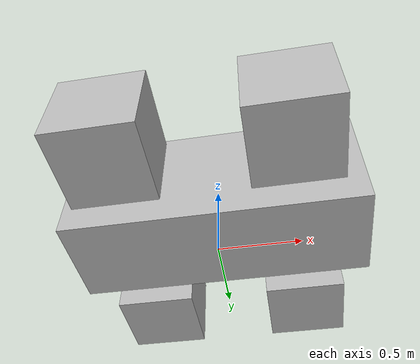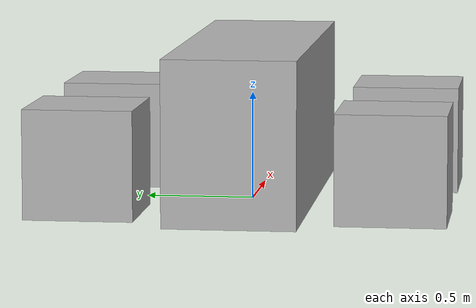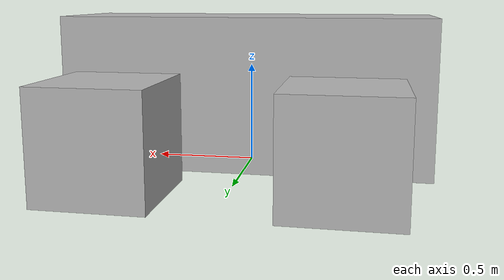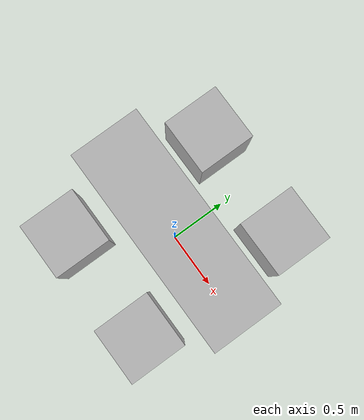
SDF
<?xml version="1.0" ?>
<sdf version='1.6'>
    <model name='Dining_Table'>
        <static>true</static>
        <!-- Table -->
        <link name="table">
            <pose>0 0 0.375 0 0 0</pose>
            <collision name="visual">
                <geometry>
                    <box>
                        <size>1.8 0.6 0.75</size>
                    </box>
                </geometry>
            </collision>
            <visual name="visual">
                <geometry>
                    <box>
                        <size>1.8 0.6 0.75</size>
                    </box>
                </geometry>
                <material>
                    <script>
                        <uri>model://Dining_Table/materials/scripts</uri>
                        <uri>model://Dining_Table/materials/textures</uri>
                        <name>Table/Dining_Table</name>
                    </script>
                </material>
            </visual>
        </link>
        <!-- Chair_Upper_Left -->
        <link name="chair_upper_left">
            <pose>0.5 0.7 0.25 0 0 0</pose>
            <collision name="visual">
                <geometry>
                    <box>
                        <size>0.5 0.5 0.5</size>
                    </box>
                </geometry>
            </collision>
            <visual name="visual">
                <geometry>
                    <box>
                        <size>0.5 0.5 0.5</size>
                    </box>
                </geometry>
                <material>
                    <script>
                        <uri>model://Dining_Table/materials/scripts</uri>
                        <uri>model://Dining_Table/materials/textures</uri>
                        <name>Table/Dining_Table</name>
                    </script>
                </material>
            </visual>
        </link>
        <!-- Chair_Lower_Left -->
        <link name="chair_lower_left">
            <pose>-0.5 0.7 0.25 0 0 0</pose>
            <collision name="visual">
                <geometry>
                    <box>
                        <size>0.5 0.5 0.5</size>
                    </box>
                </geometry>
            </collision>
            <visual name="visual">
                <geometry>
                    <box>
                        <size>0.5 0.5 0.5</size>
                    </box>
                </geometry>
                <material>
                    <script>
                        <uri>model://Dining_Table/materials/scripts</uri>
                        <uri>model://Dining_Table/materials/textures</uri>
                        <name>Table/Dining_Table</name>
                    </script>
                </material>
            </visual>
        </link>
        <!-- Chair_Upper_Right -->
        <link name="chair_upper_right">
            <pose>0.5 -0.7 0.25 0 0 0</pose>
            <collision name="visual">
                <geometry>
                    <box>
                        <size>0.5 0.5 0.5</size>
                    </box>
                </geometry>
            </collision>
            <visual name="visual">
                <geometry>
                    <box>
                        <size>0.5 0.5 0.5</size>
                    </box>
                </geometry>
                <material>
                    <script>
                        <uri>model://Dining_Table/materials/scripts</uri>
                        <uri>model://Dining_Table/materials/textures</uri>
                        <name>Table/Dining_Table</name>
                    </script>
                </material>
            </visual>
        </link>
        <!-- Chair_Lower_Right -->
        <link name="chair_lower_right">
            <pose>-0.5 -0.7 0.25 0 0 0</pose>
            <collision name="visual">
                <geometry>
                    <box>
                        <size>0.5 0.5 0.5</size>
                    </box>
                </geometry>
            </collision>
            <visual name="visual">
                <geometry>
                    <box>
                        <size>0.5 0.5 0.5</size>
                    </box>
                </geometry>
                <material>
                    <script>
                        <uri>model://Dining_Table/materials/scripts</uri>
                        <uri>model://Dining_Table/materials/textures</uri>
                        <name>Table/Dining_Table</name>
                    </script>
                </material>
            </visual>
        </link>
    </model>
</sdf>
